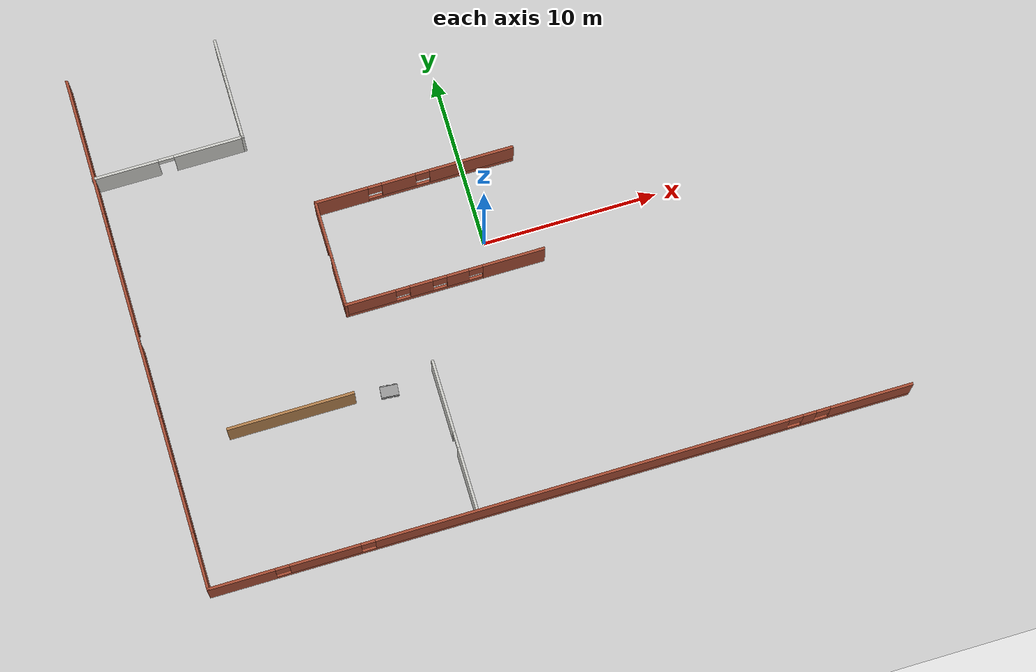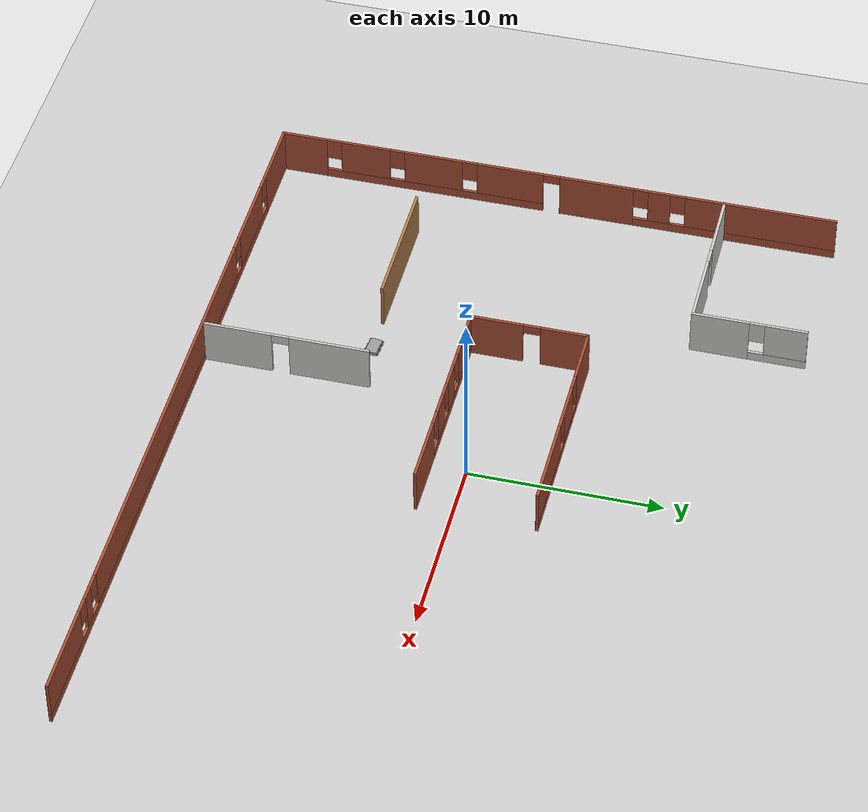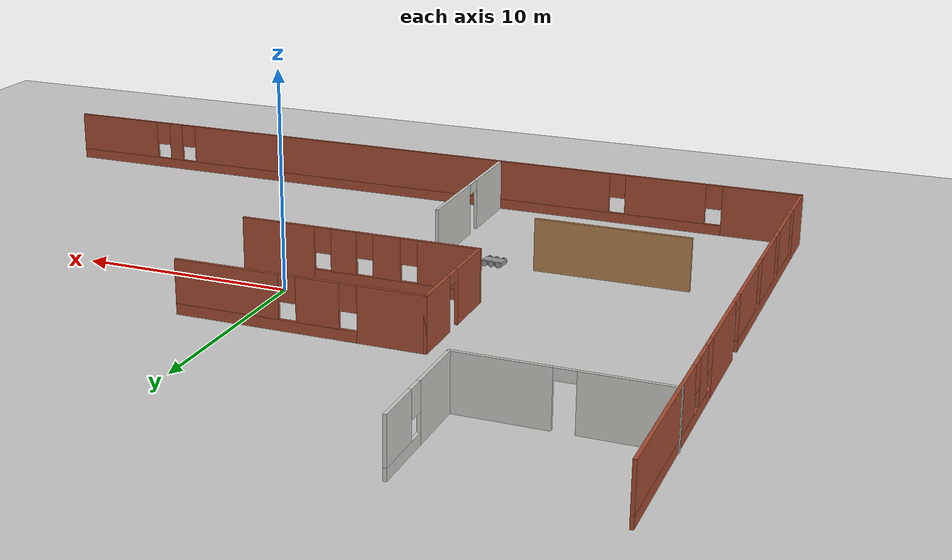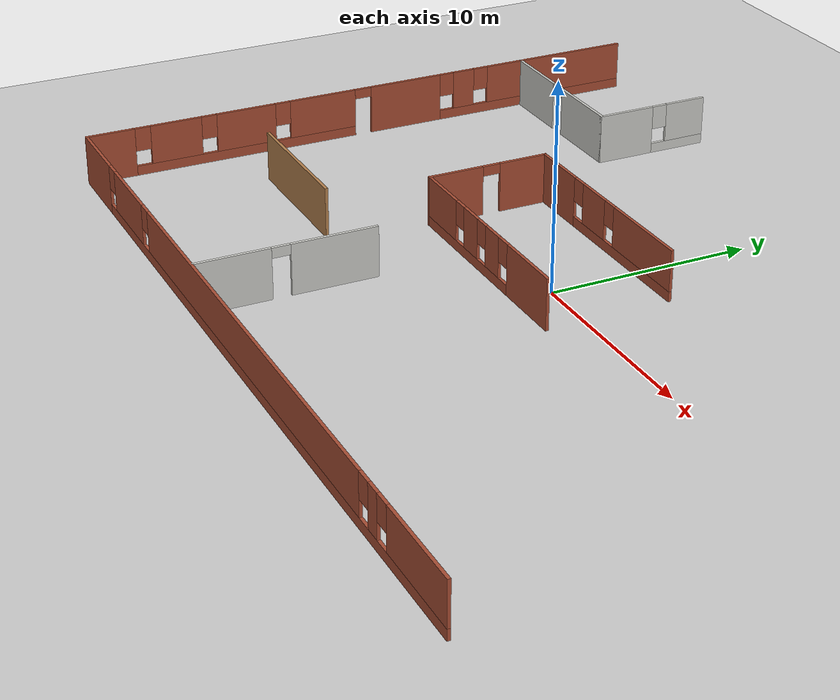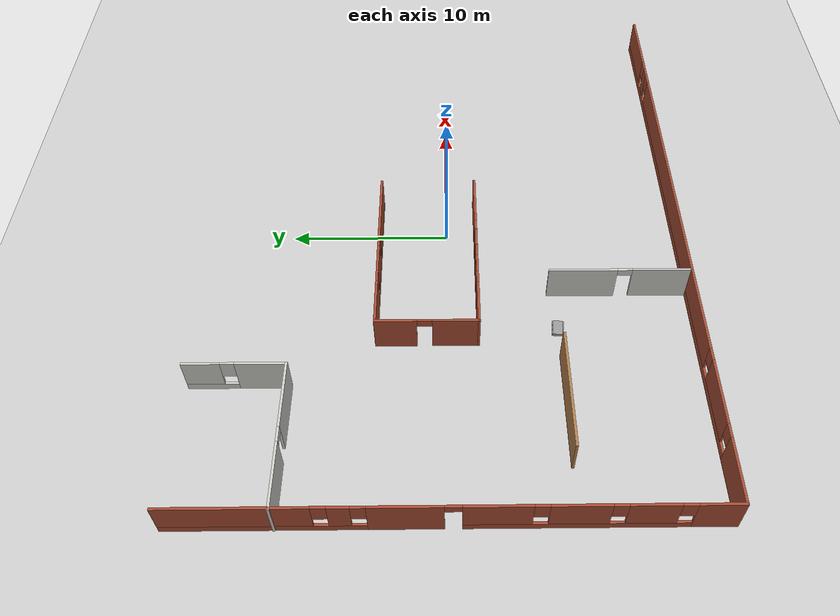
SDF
<sdf version="1.6">
 <world name="default">
  <model name="ground_plane">
   <static>1</static>
   <link name="link">
    <collision name="collision">
     <geometry><plane><normal>0 0 1</normal><size>100 100</size></plane></geometry>
     <surface>
      <contact><collide_bitmask>65535</collide_bitmask></contact>
      <friction><ode><mu>100</mu><mu2>50</mu2></ode></friction>
     </surface>
    </collision>
    <visual name="visual">
     <cast_shadows>0</cast_shadows>
     <geometry><plane><normal>0 0 1</normal><size>100 100</size></plane></geometry>
     <material>
      <script><uri>file://media/materials/scripts/gazebo.material</uri><name>Gazebo/Grey</name></script>
     </material>
    </visual>
   </link>
  </model>
  <model name="Office2">
   <pose>0.0583 0.03565 0 0 -0 0</pose>
   <link name="Wall_0">
    <pose>-19.9784 0.000161 0 0 -0 1.5708</pose>
    <visual name="Wall_0_Visual_0">
     <pose>-13.757 0 1.25 0 -0 0</pose>
     <geometry><box><size>2.48598 0.15 2.5</size></box></geometry>
     <material>
      <script><uri>file://media/materials/scripts/gazebo.material</uri><name>Gazebo/Bricks</name></script>
      <ambient>1 1 1 1</ambient>
     </material>
     <meta><layer>0</layer></meta>
    </visual>
    <collision name="Wall_0_Collision_0">
     <geometry><box><size>2.48598 0.15 2.5</size></box></geometry>
     <pose>-13.757 0 1.25 0 -0 0</pose>
    </collision>
    <visual name="Wall_0_Visual_1">
     <pose>2.2039 0 1.25 0 -0 0</pose>
     <geometry><box><size>3.96148 0.15 2.5</size></box></geometry>
     <material>
      <script><uri>file://media/materials/scripts/gazebo.material</uri><name>Gazebo/Bricks</name></script>
      <ambient>1 1 1 1</ambient>
     </material>
     <meta><layer>0</layer></meta>
    </visual>
    <collision name="Wall_0_Collision_1">
     <geometry><box><size>3.96148 0.15 2.5</size></box></geometry>
     <pose>2.2039 0 1.25 0 -0 0</pose>
    </collision>
    <visual name="Wall_0_Visual_2">
     <pose>-6.59543 0 0.25 0 -0 0</pose>
     <geometry><box><size>11.8372 0.15 0.5</size></box></geometry>
     <material>
      <script><uri>file://media/materials/scripts/gazebo.material</uri><name>Gazebo/Bricks</name></script>
      <ambient>1 1 1 1</ambient>
     </material>
     <meta><layer>0</layer></meta>
    </visual>
    <collision name="Wall_0_Collision_2">
     <geometry><box><size>11.8372 0.15 0.5</size></box></geometry>
     <pose>-6.59543 0 0.25 0 -0 0</pose>
    </collision>
    <visual name="Wall_0_Visual_3">
     <pose>9.59232 0 0.25 0 -0 0</pose>
     <geometry><box><size>10.8154 0.15 0.5</size></box></geometry>
     <material>
      <script><uri>file://media/materials/scripts/gazebo.material</uri><name>Gazebo/Bricks</name></script>
      <ambient>1 1 1 1</ambient>
     </material>
     <meta><layer>0</layer></meta>
    </visual>
    <collision name="Wall_0_Collision_3">
     <geometry><box><size>10.8154 0.15 0.5</size></box></geometry>
     <pose>9.59232 0 0.25 0 -0 0</pose>
    </collision>
    <visual name="Wall_0_Visual_4">
     <pose>-10.3805 0 1.5 0 -0 0</pose>
     <geometry><box><size>2.6671 0.15 2</size></box></geometry>
     <material>
      <script><uri>file://media/materials/scripts/gazebo.material</uri><name>Gazebo/Bricks</name></script>
      <ambient>1 1 1 1</ambient>
     </material>
     <meta><layer>0</layer></meta>
    </visual>
    <collision name="Wall_0_Collision_4">
     <geometry><box><size>2.6671 0.15 2</size></box></geometry>
     <pose>-10.3805 0 1.5 0 -0 0</pose>
    </collision>
    <visual name="Wall_0_Visual_5">
     <pose>-6.66573 0 1.5 0 -0 0</pose>
     <geometry><box><size>3.1624 0.15 2</size></box></geometry>
     <material>
      <script><uri>file://media/materials/scripts/gazebo.material</uri><name>Gazebo/Bricks</name></script>
      <ambient>1 1 1 1</ambient>
     </material>
     <meta><layer>0</layer></meta>
    </visual>
    <collision name="Wall_0_Collision_5">
     <geometry><box><size>3.1624 0.15 2</size></box></geometry>
     <pose>-6.66573 0 1.5 0 -0 0</pose>
    </collision>
    <visual name="Wall_0_Visual_6">
     <pose>-2.48068 0 1.5 0 -0 0</pose>
     <geometry><box><size>3.6077 0.15 2</size></box></geometry>
     <material>
      <script><uri>file://media/materials/scripts/gazebo.material</uri><name>Gazebo/Bricks</name></script>
      <ambient>1 1 1 1</ambient>
     </material>
     <meta><layer>0</layer></meta>
    </visual>
    <collision name="Wall_0_Collision_6">
     <geometry><box><size>3.6077 0.15 2</size></box></geometry>
     <pose>-2.48068 0 1.5 0 -0 0</pose>
    </collision>
    <visual name="Wall_0_Visual_7">
     <pose>-2.48068 0 1.5 0 -0 0</pose>
     <geometry><box><size>3.6077 0.15 2</size></box></geometry>
     <material>
      <script><uri>file://media/materials/scripts/gazebo.material</uri><name>Gazebo/Bricks</name></script>
      <ambient>1 1 1 1</ambient>
     </material>
     <meta><layer>0</layer></meta>
    </visual>
    <collision name="Wall_0_Collision_7">
     <geometry><box><size>3.6077 0.15 2</size></box></geometry>
     <pose>-2.48068 0 1.5 0 -0 0</pose>
    </collision>
    <visual name="Wall_0_Visual_8">
     <pose>5.57524 0 1.5 0 -0 0</pose>
     <geometry><box><size>1.1812 0.15 2</size></box></geometry>
     <material>
      <script><uri>file://media/materials/scripts/gazebo.material</uri><name>Gazebo/Bricks</name></script>
      <ambient>1 1 1 1</ambient>
     </material>
     <meta><layer>0</layer></meta>
    </visual>
    <collision name="Wall_0_Collision_8">
     <geometry><box><size>1.1812 0.15 2</size></box></geometry>
     <pose>5.57524 0 1.5 0 -0 0</pose>
    </collision>
    <visual name="Wall_0_Visual_9">
     <pose>10.9829 0 1.5 0 -0 0</pose>
     <geometry><box><size>8.03416 0.15 2</size></box></geometry>
     <material>
      <script><uri>file://media/materials/scripts/gazebo.material</uri><name>Gazebo/Bricks</name></script>
      <ambient>1 1 1 1</ambient>
     </material>
     <meta><layer>0</layer></meta>
    </visual>
    <collision name="Wall_0_Collision_9">
     <geometry><box><size>8.03416 0.15 2</size></box></geometry>
     <pose>10.9829 0 1.5 0 -0 0</pose>
    </collision>
    <visual name="Wall_0_Visual_10">
     <pose>-12.114 0 1.9 0 -0 0</pose>
     <geometry><box><size>0.8 0.15 1.2</size></box></geometry>
     <material>
      <script><uri>file://media/materials/scripts/gazebo.material</uri><name>Gazebo/Bricks</name></script>
      <ambient>1 1 1 1</ambient>
     </material>
     <meta><layer>0</layer></meta>
    </visual>
    <collision name="Wall_0_Collision_10">
     <geometry><box><size>0.8 0.15 1.2</size></box></geometry>
     <pose>-12.114 0 1.9 0 -0 0</pose>
    </collision>
    <visual name="Wall_0_Visual_11">
     <pose>4.58464 0 1.9 0 -0 0</pose>
     <geometry><box><size>0.8 0.15 1.2</size></box></geometry>
     <material>
      <script><uri>file://media/materials/scripts/gazebo.material</uri><name>Gazebo/Bricks</name></script>
      <ambient>1 1 1 1</ambient>
     </material>
     <meta><layer>0</layer></meta>
    </visual>
    <collision name="Wall_0_Collision_11">
     <geometry><box><size>0.8 0.15 1.2</size></box></geometry>
     <pose>4.58464 0 1.9 0 -0 0</pose>
    </collision>
    <visual name="Wall_0_Visual_12">
     <pose>-8.64693 0 1.9 0 -0 0</pose>
     <geometry><box><size>0.8 0.15 1.2</size></box></geometry>
     <material>
      <script><uri>file://media/materials/scripts/gazebo.material</uri><name>Gazebo/Bricks</name></script>
      <ambient>1 1 1 1</ambient>
     </material>
     <meta><layer>0</layer></meta>
    </visual>
    <collision name="Wall_0_Collision_12">
     <geometry><box><size>0.8 0.15 1.2</size></box></geometry>
     <pose>-8.64693 0 1.9 0 -0 0</pose>
    </collision>
    <visual name="Wall_0_Visual_13">
     <pose>-4.68453 0 1.9 0 -0 0</pose>
     <geometry><box><size>0.8 0.15 1.2</size></box></geometry>
     <material>
      <script><uri>file://media/materials/scripts/gazebo.material</uri><name>Gazebo/Bricks</name></script>
      <ambient>1 1 1 1</ambient>
     </material>
     <meta><layer>0</layer></meta>
    </visual>
    <collision name="Wall_0_Collision_13">
     <geometry><box><size>0.8 0.15 1.2</size></box></geometry>
     <pose>-4.68453 0 1.9 0 -0 0</pose>
    </collision>
    <visual name="Wall_0_Visual_14">
     <pose>6.56584 0 1.9 0 -0 0</pose>
     <geometry><box><size>0.8 0.15 1.2</size></box></geometry>
     <material>
      <script><uri>file://media/materials/scripts/gazebo.material</uri><name>Gazebo/Bricks</name></script>
      <ambient>1 1 1 1</ambient>
     </material>
     <meta><layer>0</layer></meta>
    </visual>
    <collision name="Wall_0_Collision_14">
     <geometry><box><size>0.8 0.15 1.2</size></box></geometry>
     <pose>6.56584 0 1.9 0 -0 0</pose>
    </collision>
    <visual name="Wall_0_Visual_15">
     <pose>-0.226838 0 2.25 0 -0 0</pose>
     <geometry><box><size>0.9 0.15 0.5</size></box></geometry>
     <material>
      <script><uri>file://media/materials/scripts/gazebo.material</uri><name>Gazebo/Bricks</name></script>
      <ambient>1 1 1 1</ambient>
     </material>
     <meta><layer>0</layer></meta>
    </visual>
    <collision name="Wall_0_Collision_15">
     <geometry><box><size>0.9 0.15 0.5</size></box></geometry>
     <pose>-0.226838 0 2.25 0 -0 0</pose>
    </collision>
    <visual name="Wall_0_Visual_16">
     <pose>-0.226838 0 2.25 0 -0 0</pose>
     <geometry><box><size>0.9 0.15 0.5</size></box></geometry>
     <material>
      <script><uri>file://media/materials/scripts/gazebo.material</uri><name>Gazebo/Bricks</name></script>
      <ambient>1 1 1 1</ambient>
     </material>
     <meta><layer>0</layer></meta>
    </visual>
    <collision name="Wall_0_Collision_16">
     <geometry><box><size>0.9 0.15 0.5</size></box></geometry>
     <pose>-0.226838 0 2.25 0 -0 0</pose>
    </collision>
   </link>
   <link name="Wall_11">
    <pose>-15.7131 9.0425 0 0 -0 0</pose>
    <visual name="Wall_11_Visual_0">
     <pose>-2.47517 0 1.25 0 -0 0</pose>
     <geometry><box><size>3.79967 0.15 2.5</size></box></geometry>
     <material>
      <script><uri>file://media/materials/scripts/gazebo.material</uri><name>Gazebo/CeilingTiled</name></script>
      <ambient>0.203922 0.396078 0.643137 1</ambient>
     </material>
     <meta><layer>0</layer></meta>
    </visual>
    <collision name="Wall_11_Collision_0">
     <geometry><box><size>3.79967 0.15 2.5</size></box></geometry>
     <pose>-2.47517 0 1.25 0 -0 0</pose>
    </collision>
    <visual name="Wall_11_Visual_1">
     <pose>2.34983 0 1.25 0 -0 0</pose>
     <geometry><box><size>4.05033 0.15 2.5</size></box></geometry>
     <material>
      <script><uri>file://media/materials/scripts/gazebo.material</uri><name>Gazebo/CeilingTiled</name></script>
      <ambient>0.203922 0.396078 0.643137 1</ambient>
     </material>
     <meta><layer>0</layer></meta>
    </visual>
    <collision name="Wall_11_Collision_1">
     <geometry><box><size>4.05033 0.15 2.5</size></box></geometry>
     <pose>2.34983 0 1.25 0 -0 0</pose>
    </collision>
    <visual name="Wall_11_Visual_2">
     <pose>-0.125334 0 2.25 0 -0 0</pose>
     <geometry><box><size>0.9 0.15 0.5</size></box></geometry>
     <material>
      <script><uri>file://media/materials/scripts/gazebo.material</uri><name>Gazebo/CeilingTiled</name></script>
      <ambient>0.203922 0.396078 0.643137 1</ambient>
     </material>
     <meta><layer>0</layer></meta>
    </visual>
    <collision name="Wall_11_Collision_2">
     <geometry><box><size>0.9 0.15 0.5</size></box></geometry>
     <pose>-0.125334 0 2.25 0 -0 0</pose>
    </collision>
   </link>
   <link name="Wall_15">
    <pose>-11.4131 11.9675 0 0 -0 1.5708</pose>
    <visual name="Wall_15_Visual_0">
     <pose>-1.49971 0 1.25 0 -0 0</pose>
     <geometry><box><size>3.00058 0.15 2.5</size></box></geometry>
     <material>
      <script><uri>file://media/materials/scripts/gazebo.material</uri><name>Gazebo/CeilingTiled</name></script>
      <ambient>1 1 1 1</ambient>
     </material>
     <meta><layer>0</layer></meta>
    </visual>
    <collision name="Wall_15_Collision_0">
     <geometry><box><size>3.00058 0.15 2.5</size></box></geometry>
     <pose>-1.49971 0 1.25 0 -0 0</pose>
    </collision>
    <visual name="Wall_15_Visual_1">
     <pose>1.50029 0 0.25 0 -0 0</pose>
     <geometry><box><size>2.99942 0.15 0.5</size></box></geometry>
     <material>
      <script><uri>file://media/materials/scripts/gazebo.material</uri><name>Gazebo/CeilingTiled</name></script>
      <ambient>1 1 1 1</ambient>
     </material>
     <meta><layer>0</layer></meta>
    </visual>
    <collision name="Wall_15_Collision_1">
     <geometry><box><size>2.99942 0.15 0.5</size></box></geometry>
     <pose>1.50029 0 0.25 0 -0 0</pose>
    </collision>
    <visual name="Wall_15_Visual_2">
     <pose>1.90029 0 1.5 0 -0 0</pose>
     <geometry><box><size>2.19942 0.15 2</size></box></geometry>
     <material>
      <script><uri>file://media/materials/scripts/gazebo.material</uri><name>Gazebo/CeilingTiled</name></script>
      <ambient>1 1 1 1</ambient>
     </material>
     <meta><layer>0</layer></meta>
    </visual>
    <collision name="Wall_15_Collision_2">
     <geometry><box><size>2.19942 0.15 2</size></box></geometry>
     <pose>1.90029 0 1.5 0 -0 0</pose>
    </collision>
    <visual name="Wall_15_Visual_3">
     <pose>0.400581 0 1.9 0 -0 0</pose>
     <geometry><box><size>0.8 0.15 1.2</size></box></geometry>
     <material>
      <script><uri>file://media/materials/scripts/gazebo.material</uri><name>Gazebo/CeilingTiled</name></script>
      <ambient>1 1 1 1</ambient>
     </material>
     <meta><layer>0</layer></meta>
    </visual>
    <collision name="Wall_15_Collision_3">
     <geometry><box><size>0.8 0.15 1.2</size></box></geometry>
     <pose>0.400581 0 1.9 0 -0 0</pose>
    </collision>
   </link>
   <link name="Wall_22">
    <pose>-4.86214 -10.5734 0 0 -0 -1.5708</pose>
    <visual name="Wall_22_Visual_0">
     <pose>-2.27908 0 1.25 0 -0 0</pose>
     <geometry><box><size>4.19185 0.15 2.5</size></box></geometry>
     <material>
      <script><uri>file://media/materials/scripts/gazebo.material</uri><name>Gazebo/CeilingTiled</name></script>
      <ambient>1 1 1 1</ambient>
     </material>
     <meta><layer>0</layer></meta>
    </visual>
    <collision name="Wall_22_Collision_0">
     <geometry><box><size>4.19185 0.15 2.5</size></box></geometry>
     <pose>-2.27908 0 1.25 0 -0 0</pose>
    </collision>
    <visual name="Wall_22_Visual_1">
     <pose>2.54592 0 1.25 0 -0 0</pose>
     <geometry><box><size>3.65815 0.15 2.5</size></box></geometry>
     <material>
      <script><uri>file://media/materials/scripts/gazebo.material</uri><name>Gazebo/CeilingTiled</name></script>
      <ambient>1 1 1 1</ambient>
     </material>
     <meta><layer>0</layer></meta>
    </visual>
    <collision name="Wall_22_Collision_1">
     <geometry><box><size>3.65815 0.15 2.5</size></box></geometry>
     <pose>2.54592 0 1.25 0 -0 0</pose>
    </collision>
    <visual name="Wall_22_Visual_2">
     <pose>0.266848 0 2.25 0 -0 0</pose>
     <geometry><box><size>0.9 0.15 0.5</size></box></geometry>
     <material>
      <script><uri>file://media/materials/scripts/gazebo.material</uri><name>Gazebo/CeilingTiled</name></script>
      <ambient>1 1 1 1</ambient>
     </material>
     <meta><layer>0</layer></meta>
    </visual>
    <collision name="Wall_22_Collision_2">
     <geometry><box><size>0.9 0.15 0.5</size></box></geometry>
     <pose>0.266848 0 2.25 0 -0 0</pose>
    </collision>
   </link>
   <link name="Wall_26">
    <pose>-2.87549 4.23102 0 0 -0 0</pose>
    <visual name="Wall_26_Visual_0">
     <pose>-4.21433 0 1.25 0 -0 0</pose>
     <geometry><box><size>3.07134 0.15 2.5</size></box></geometry>
     <material>
      <script><uri>file://media/materials/scripts/gazebo.material</uri><name>Gazebo/Bricks</name></script>
      <ambient>1 1 1 1</ambient>
     </material>
     <meta><layer>0</layer></meta>
    </visual>
    <collision name="Wall_26_Collision_0">
     <geometry><box><size>3.07134 0.15 2.5</size></box></geometry>
     <pose>-4.21433 0 1.25 0 -0 0</pose>
    </collision>
    <visual name="Wall_26_Visual_1">
     <pose>1.53567 0 0.25 0 -0 0</pose>
     <geometry><box><size>8.42866 0.15 0.5</size></box></geometry>
     <material>
      <script><uri>file://media/materials/scripts/gazebo.material</uri><name>Gazebo/Bricks</name></script>
      <ambient>1 1 1 1</ambient>
     </material>
     <meta><layer>0</layer></meta>
    </visual>
    <collision name="Wall_26_Collision_1">
     <geometry><box><size>8.42866 0.15 0.5</size></box></geometry>
     <pose>1.53567 0 0.25 0 -0 0</pose>
    </collision>
    <visual name="Wall_26_Visual_2">
     <pose>-0.898898 0 1.5 0 -0 0</pose>
     <geometry><box><size>1.95952 0.15 2</size></box></geometry>
     <material>
      <script><uri>file://media/materials/scripts/gazebo.material</uri><name>Gazebo/Bricks</name></script>
      <ambient>1 1 1 1</ambient>
     </material>
     <meta><layer>0</layer></meta>
    </visual>
    <collision name="Wall_26_Collision_2">
     <geometry><box><size>1.95952 0.15 2</size></box></geometry>
     <pose>-0.898898 0 1.5 0 -0 0</pose>
    </collision>
    <visual name="Wall_26_Visual_3">
     <pose>3.31543 0 1.5 0 -0 0</pose>
     <geometry><box><size>4.86913 0.15 2</size></box></geometry>
     <material>
      <script><uri>file://media/materials/scripts/gazebo.material</uri><name>Gazebo/Bricks</name></script>
      <ambient>1 1 1 1</ambient>
     </material>
     <meta><layer>0</layer></meta>
    </visual>
    <collision name="Wall_26_Collision_3">
     <geometry><box><size>4.86913 0.15 2</size></box></geometry>
     <pose>3.31543 0 1.5 0 -0 0</pose>
    </collision>
    <visual name="Wall_26_Visual_4">
     <pose>-2.27866 0 1.9 0 -0 0</pose>
     <geometry><box><size>0.8 0.15 1.2</size></box></geometry>
     <material>
      <script><uri>file://media/materials/scripts/gazebo.material</uri><name>Gazebo/Bricks</name></script>
      <ambient>1 1 1 1</ambient>
     </material>
     <meta><layer>0</layer></meta>
    </visual>
    <collision name="Wall_26_Collision_4">
     <geometry><box><size>0.8 0.15 1.2</size></box></geometry>
     <pose>-2.27866 0 1.9 0 -0 0</pose>
    </collision>
    <visual name="Wall_26_Visual_5">
     <pose>0.480865 0 1.9 0 -0 0</pose>
     <geometry><box><size>0.8 0.15 1.2</size></box></geometry>
     <material>
      <script><uri>file://media/materials/scripts/gazebo.material</uri><name>Gazebo/Bricks</name></script>
      <ambient>1 1 1 1</ambient>
     </material>
     <meta><layer>0</layer></meta>
    </visual>
    <collision name="Wall_26_Collision_5">
     <geometry><box><size>0.8 0.15 1.2</size></box></geometry>
     <pose>0.480865 0 1.9 0 -0 0</pose>
    </collision>
   </link>
   <link name="Wall_28">
    <pose>-2.87549 -1.86898 0 0 -0 3.14159</pose>
    <visual name="Wall_28_Visual_0">
     <pose>-3.95225 0 1.25 0 -0 0</pose>
     <geometry><box><size>3.59551 0.15 2.5</size></box></geometry>
     <material>
      <script><uri>file://media/materials/scripts/gazebo.material</uri><name>Gazebo/Bricks</name></script>
      <ambient>1 1 1 1</ambient>
     </material>
     <meta><layer>0</layer></meta>
    </visual>
    <collision name="Wall_28_Collision_0">
     <geometry><box><size>3.59551 0.15 2.5</size></box></geometry>
     <pose>-3.95225 0 1.25 0 -0 0</pose>
    </collision>
    <visual name="Wall_28_Visual_1">
     <pose>1.79775 0 0.25 0 -0 0</pose>
     <geometry><box><size>7.90449 0.15 0.5</size></box></geometry>
     <material>
      <script><uri>file://media/materials/scripts/gazebo.material</uri><name>Gazebo/Bricks</name></script>
      <ambient>1 1 1 1</ambient>
     </material>
     <meta><layer>0</layer></meta>
    </visual>
    <collision name="Wall_28_Collision_1">
     <geometry><box><size>7.90449 0.15 0.5</size></box></geometry>
     <pose>1.79775 0 0.25 0 -0 0</pose>
    </collision>
    <visual name="Wall_28_Visual_2">
     <pose>-0.728514 0 1.5 0 -0 0</pose>
     <geometry><box><size>1.25195 0.15 2</size></box></geometry>
     <material>
      <script><uri>file://media/materials/scripts/gazebo.material</uri><name>Gazebo/Bricks</name></script>
      <ambient>1 1 1 1</ambient>
     </material>
     <meta><layer>0</layer></meta>
    </visual>
    <collision name="Wall_28_Collision_2">
     <geometry><box><size>1.25195 0.15 2</size></box></geometry>
     <pose>-0.728514 0 1.5 0 -0 0</pose>
    </collision>
    <visual name="Wall_28_Visual_3">
     <pose>1.35882 0 1.5 0 -0 0</pose>
     <geometry><box><size>1.32271 0.15 2</size></box></geometry>
     <material>
      <script><uri>file://media/materials/scripts/gazebo.material</uri><name>Gazebo/Bricks</name></script>
      <ambient>1 1 1 1</ambient>
     </material>
     <meta><layer>0</layer></meta>
    </visual>
    <collision name="Wall_28_Collision_3">
     <geometry><box><size>1.32271 0.15 2</size></box></geometry>
     <pose>1.35882 0 1.5 0 -0 0</pose>
    </collision>
    <visual name="Wall_28_Visual_4">
     <pose>4.28509 0 1.5 0 -0 0</pose>
     <geometry><box><size>2.92983 0.15 2</size></box></geometry>
     <material>
      <script><uri>file://media/materials/scripts/gazebo.material</uri><name>Gazebo/Bricks</name></script>
      <ambient>1 1 1 1</ambient>
     </material>
     <meta><layer>0</layer></meta>
    </visual>
    <collision name="Wall_28_Collision_4">
     <geometry><box><size>2.92983 0.15 2</size></box></geometry>
     <pose>4.28509 0 1.5 0 -0 0</pose>
    </collision>
    <visual name="Wall_28_Visual_5">
     <pose>-1.75449 0 1.9 0 -0 0</pose>
     <geometry><box><size>0.8 0.15 1.2</size></box></geometry>
     <material>
      <script><uri>file://media/materials/scripts/gazebo.material</uri><name>Gazebo/Bricks</name></script>
      <ambient>1 1 1 1</ambient>
     </material>
     <meta><layer>0</layer></meta>
    </visual>
    <collision name="Wall_28_Collision_5">
     <geometry><box><size>0.8 0.15 1.2</size></box></geometry>
     <pose>-1.75449 0 1.9 0 -0 0</pose>
    </collision>
    <visual name="Wall_28_Visual_6">
     <pose>0.297463 0 1.9 0 -0 0</pose>
     <geometry><box><size>0.8 0.15 1.2</size></box></geometry>
     <material>
      <script><uri>file://media/materials/scripts/gazebo.material</uri><name>Gazebo/Bricks</name></script>
      <ambient>1 1 1 1</ambient>
     </material>
     <meta><layer>0</layer></meta>
    </visual>
    <collision name="Wall_28_Collision_6">
     <geometry><box><size>0.8 0.15 1.2</size></box></geometry>
     <pose>0.297463 0 1.9 0 -0 0</pose>
    </collision>
    <visual name="Wall_28_Visual_7">
     <pose>2.42017 0 1.9 0 -0 0</pose>
     <geometry><box><size>0.8 0.15 1.2</size></box></geometry>
     <material>
      <script><uri>file://media/materials/scripts/gazebo.material</uri><name>Gazebo/Bricks</name></script>
      <ambient>1 1 1 1</ambient>
     </material>
     <meta><layer>0</layer></meta>
    </visual>
    <collision name="Wall_28_Collision_7">
     <geometry><box><size>0.8 0.15 1.2</size></box></geometry>
     <pose>2.42017 0 1.9 0 -0 0</pose>
    </collision>
   </link>
   <link name="Wall_29">
    <pose>-8.55049 1.18102 0 0 -0 1.5708</pose>
    <visual name="Wall_29_Visual_0">
     <pose>-1.71302 0 1.25 0 -0 0</pose>
     <geometry><box><size>2.82396 0.15 2.5</size></box></geometry>
     <material>
      <script><uri>file://media/materials/scripts/gazebo.material</uri><name>Gazebo/Bricks</name></script>
      <ambient>1 1 1 1</ambient>
     </material>
     <meta><layer>0</layer></meta>
    </visual>
    <collision name="Wall_29_Collision_0">
     <geometry><box><size>2.82396 0.15 2.5</size></box></geometry>
     <pose>-1.71302 0 1.25 0 -0 0</pose>
    </collision>
    <visual name="Wall_29_Visual_1">
     <pose>1.86198 0 1.25 0 -0 0</pose>
     <geometry><box><size>2.52604 0.15 2.5</size></box></geometry>
     <material>
      <script><uri>file://media/materials/scripts/gazebo.material</uri><name>Gazebo/Bricks</name></script>
      <ambient>1 1 1 1</ambient>
     </material>
     <meta><layer>0</layer></meta>
    </visual>
    <collision name="Wall_29_Collision_1">
     <geometry><box><size>2.52604 0.15 2.5</size></box></geometry>
     <pose>1.86198 0 1.25 0 -0 0</pose>
    </collision>
    <visual name="Wall_29_Visual_2">
     <pose>0.148961 0 2.25 0 -0 0</pose>
     <geometry><box><size>0.9 0.15 0.5</size></box></geometry>
     <material>
      <script><uri>file://media/materials/scripts/gazebo.material</uri><name>Gazebo/Bricks</name></script>
      <ambient>1 1 1 1</ambient>
     </material>
     <meta><layer>0</layer></meta>
    </visual>
    <collision name="Wall_29_Collision_2">
     <geometry><box><size>0.9 0.15 0.5</size></box></geometry>
     <pose>0.148961 0 2.25 0 -0 0</pose>
    </collision>
   </link>
   <link name="Wall_33">
    <collision name="Wall_33_Collision">
     <geometry><box><size>7.25 0.15 2.5</size></box></geometry>
     <pose>0 0 1.25 0 -0 0</pose>
    </collision>
    <visual name="Wall_33_Visual">
     <pose>0 0 1.25 0 -0 0</pose>
     <geometry><box><size>7.25 0.15 2.5</size></box></geometry>
     <material>
      <script><uri>file://media/materials/scripts/gazebo.material</uri><name>Gazebo/Wood</name></script>
      <ambient>1 1 1 1</ambient>
     </material>
     <meta><layer>0</layer></meta>
    </visual>
    <pose>-13.0668 -6.73633 0 0 -0 0</pose>
   </link>
   <link name="Wall_9">
    <pose>-0.053378 -14.925 0 0 -0 -8e-06</pose>
    <visual name="Wall_9_Visual_0">
     <pose>-18.0925 0 1.25 0 -0 0</pose>
     <geometry><box><size>3.81491 0.15 2.5</size></box></geometry>
     <material>
      <script><uri>file://media/materials/scripts/gazebo.material</uri><name>Gazebo/Bricks</name></script>
      <ambient>1 1 1 1</ambient>
     </material>
     <meta><layer>0</layer></meta>
    </visual>
    <collision name="Wall_9_Collision_0">
     <geometry><box><size>3.81491 0.15 2.5</size></box></geometry>
     <pose>-18.0925 0 1.25 0 -0 0</pose>
    </collision>
    <visual name="Wall_9_Visual_1">
     <pose>1.90746 0 0.25 0 -0 0</pose>
     <geometry><box><size>36.1851 0.15 0.5</size></box></geometry>
     <material>
      <script><uri>file://media/materials/scripts/gazebo.material</uri><name>Gazebo/Bricks</name></script>
      <ambient>1 1 1 1</ambient>
     </material>
     <meta><layer>0</layer></meta>
    </visual>
    <collision name="Wall_9_Collision_1">
     <geometry><box><size>36.1851 0.15 0.5</size></box></geometry>
     <pose>1.90746 0 0.25 0 -0 0</pose>
    </collision>
    <visual name="Wall_9_Visual_2">
     <pose>-13.3793 0 1.5 0 -0 0</pose>
     <geometry><box><size>4.01148 0.15 2</size></box></geometry>
     <material>
      <script><uri>file://media/materials/scripts/gazebo.material</uri><name>Gazebo/Bricks</name></script>
      <ambient>1 1 1 1</ambient>
     </material>
     <meta><layer>0</layer></meta>
    </visual>
    <collision name="Wall_9_Collision_2">
     <geometry><box><size>4.01148 0.15 2</size></box></geometry>
     <pose>-13.3793 0 1.5 0 -0 0</pose>
    </collision>
    <visual name="Wall_9_Visual_3">
     <pose>1.16123 0 1.5 0 -0 0</pose>
     <geometry><box><size>23.4697 0.15 2</size></box></geometry>
     <material>
      <script><uri>file://media/materials/scripts/gazebo.material</uri><name>Gazebo/Bricks</name></script>
      <ambient>1 1 1 1</ambient>
     </material>
     <meta><layer>0</layer></meta>
    </visual>
    <collision name="Wall_9_Collision_3">
     <geometry><box><size>23.4697 0.15 2</size></box></geometry>
     <pose>1.16123 0 1.5 0 -0 0</pose>
    </collision>
    <visual name="Wall_9_Visual_4">
     <pose>14.0744 0 1.5 0 -0 0</pose>
     <geometry><box><size>0.756656 0.15 2</size></box></geometry>
     <material>
      <script><uri>file://media/materials/scripts/gazebo.material</uri><name>Gazebo/Bricks</name></script>
      <ambient>1 1 1 1</ambient>
     </material>
     <meta><layer>0</layer></meta>
    </visual>
    <collision name="Wall_9_Collision_4">
     <geometry><box><size>0.756656 0.15 2</size></box></geometry>
     <pose>14.0744 0 1.5 0 -0 0</pose>
    </collision>
    <visual name="Wall_9_Visual_5">
     <pose>17.6264 0 1.5 0 -0 0</pose>
     <geometry><box><size>4.74728 0.15 2</size></box></geometry>
     <material>
      <script><uri>file://media/materials/scripts/gazebo.material</uri><name>Gazebo/Bricks</name></script>
      <ambient>1 1 1 1</ambient>
     </material>
     <meta><layer>0</layer></meta>
    </visual>
    <collision name="Wall_9_Collision_5">
     <geometry><box><size>4.74728 0.15 2</size></box></geometry>
     <pose>17.6264 0 1.5 0 -0 0</pose>
    </collision>
    <visual name="Wall_9_Visual_6">
     <pose>-15.7851 0 1.9 0 -0 0</pose>
     <geometry><box><size>0.8 0.15 1.2</size></box></geometry>
     <material>
      <script><uri>file://media/materials/scripts/gazebo.material</uri><name>Gazebo/Bricks</name></script>
      <ambient>1 1 1 1</ambient>
     </material>
     <meta><layer>0</layer></meta>
    </visual>
    <collision name="Wall_9_Collision_6">
     <geometry><box><size>0.8 0.15 1.2</size></box></geometry>
     <pose>-15.7851 0 1.9 0 -0 0</pose>
    </collision>
    <visual name="Wall_9_Visual_7">
     <pose>-10.9736 0 1.9 0 -0 0</pose>
     <geometry><box><size>0.8 0.15 1.2</size></box></geometry>
     <material>
      <script><uri>file://media/materials/scripts/gazebo.material</uri><name>Gazebo/Bricks</name></script>
      <ambient>1 1 1 1</ambient>
     </material>
     <meta><layer>0</layer></meta>
    </visual>
    <collision name="Wall_9_Collision_7">
     <geometry><box><size>0.8 0.15 1.2</size></box></geometry>
     <pose>-10.9736 0 1.9 0 -0 0</pose>
    </collision>
    <visual name="Wall_9_Visual_8">
     <pose>13.2961 0 1.9 0 -0 0</pose>
     <geometry><box><size>0.8 0.15 1.2</size></box></geometry>
     <material>
      <script><uri>file://media/materials/scripts/gazebo.material</uri><name>Gazebo/Bricks</name></script>
      <ambient>1 1 1 1</ambient>
     </material>
     <meta><layer>0</layer></meta>
    </visual>
    <collision name="Wall_9_Collision_8">
     <geometry><box><size>0.8 0.15 1.2</size></box></geometry>
     <pose>13.2961 0 1.9 0 -0 0</pose>
    </collision>
    <visual name="Wall_9_Visual_9">
     <pose>14.8527 0 1.9 0 -0 0</pose>
     <geometry><box><size>0.8 0.15 1.2</size></box></geometry>
     <material>
      <script><uri>file://media/materials/scripts/gazebo.material</uri><name>Gazebo/Bricks</name></script>
      <ambient>1 1 1 1</ambient>
     </material>
     <meta><layer>0</layer></meta>
    </visual>
    <collision name="Wall_9_Collision_9">
     <geometry><box><size>0.8 0.15 1.2</size></box></geometry>
     <pose>14.8527 0 1.9 0 -0 0</pose>
    </collision>
   </link>
   <static>1</static>
  </model>
  <model name="rover1">
   <link name="link_0">
    <inertial>
     <mass>1</mass>
     <inertia>
      <ixx>0.166667</ixx>
      <ixy>0</ixy>
      <ixz>0</ixz>
      <iyy>0.166667</iyy>
      <iyz>0</iyz>
      <izz>0.166667</izz>
     </inertia>
    </inertial>
    <pose>-0.000993 0.033414 0.112494 0 -0 1.5707</pose>
    <visual name="visual">
     <geometry><box><size>0.6 1 0.2</size></box></geometry>
     <material>
      <lighting>1</lighting>
      <script><uri>file://media/materials/scripts/gazebo.material</uri><name>Gazebo/Grey</name></script>
      <shader type="vertex"><normal_map>__default__</normal_map></shader>
      <ambient>0.3 0.3 0.3 1</ambient>
      <diffuse>0.7 0.7 0.7 1</diffuse>
      <specular>0.01 0.01 0.01 1</specular>
      <emissive>0 0 0 1</emissive>
     </material>
    </visual>
    <collision name="collision">
     <geometry><box><size>0.6 1 0.2</size></box></geometry>
     <surface>
      <friction>
       <ode><mu>1</mu><mu2>1</mu2><fdir1>0 0 0</fdir1><slip1>0</slip1><slip2>0</slip2></ode>
       <torsional>
        <coefficient>1</coefficient>
        <patch_radius>0</patch_radius>
        <surface_radius>0</surface_radius>
        <use_patch_radius>1</use_patch_radius>
        <ode><slip>0</slip></ode>
       </torsional>
      </friction>
      <bounce><restitution_coefficient>0</restitution_coefficient><threshold>1e+06</threshold></bounce>
      <contact>
       <collide_without_contact>0</collide_without_contact>
       <collide_without_contact_bitmask>1</collide_without_contact_bitmask>
       <collide_bitmask>1</collide_bitmask>
       <ode>
        <soft_cfm>0</soft_cfm>
        <soft_erp>0.2</soft_erp>
        <kp>1e+13</kp>
        <kd>1</kd>
        <max_vel>0.01</max_vel>
        <min_depth>0</min_depth>
       </ode>
       <bullet>
        <split_impulse>1</split_impulse>
        <split_impulse_penetration_threshold>-0.01</split_impulse_penetration_threshold>
        <soft_cfm>0</soft_cfm>
        <soft_erp>0.2</soft_erp>
        <kp>1e+13</kp>
        <kd>1</kd>
       </bullet>
      </contact>
     </surface>
    </collision>
   </link>
   <link name="link_1">
    <inertial>
     <mass>1</mass>
     <inertia><ixx>0.145833</ixx><ixy>0</ixy><ixz>0</ixz><iyy>0.145833</iyy><iyz>0</iyz><izz>0.125</izz></inertia>
    </inertial>
    <pose>-0.000993 -0.291648 0.102481 1.5707 -0 0</pose>
    <visual name="visual">
     <geometry><cylinder><radius>0.15</radius><length>0.05</length></cylinder></geometry>
     <material>
      <lighting>1</lighting>
      <script><uri>file://media/materials/scripts/gazebo.material</uri><name>Gazebo/Grey</name></script>
      <shader type="vertex"><normal_map>__default__</normal_map></shader>
      <ambient>0.3 0.3 0.3 1</ambient>
      <diffuse>0.7 0.7 0.7 1</diffuse>
      <specular>0.01 0.01 0.01 1</specular>
      <emissive>0 0 0 1</emissive>
     </material>
    </visual>
    <collision name="collision">
     <geometry><cylinder><radius>0.15</radius><length>0.05</length></cylinder></geometry>
     <surface>
      <friction>
       <ode><mu>1</mu><mu2>1</mu2><fdir1>0 0 0</fdir1><slip1>0</slip1><slip2>0</slip2></ode>
       <torsional>
        <coefficient>1</coefficient>
        <patch_radius>0</patch_radius>
        <surface_radius>0</surface_radius>
        <use_patch_radius>1</use_patch_radius>
        <ode><slip>0</slip></ode>
       </torsional>
      </friction>
      <bounce><restitution_coefficient>0</restitution_coefficient><threshold>1e+06</threshold></bounce>
      <contact>
       <collide_without_contact>0</collide_without_contact>
       <collide_without_contact_bitmask>1</collide_without_contact_bitmask>
       <collide_bitmask>1</collide_bitmask>
       <ode>
        <soft_cfm>0</soft_cfm>
        <soft_erp>0.2</soft_erp>
        <kp>1e+13</kp>
        <kd>1</kd>
        <max_vel>0.01</max_vel>
        <min_depth>0</min_depth>
       </ode>
       <bullet>
        <split_impulse>1</split_impulse>
        <split_impulse_penetration_threshold>-0.01</split_impulse_penetration_threshold>
        <soft_cfm>0</soft_cfm>
        <soft_erp>0.2</soft_erp>
        <kp>1e+13</kp>
        <kd>1</kd>
       </bullet>
      </contact>
     </surface>
    </collision>
   </link>
   <link name="link_1_clone">
    <inertial>
     <mass>1</mass>
     <inertia><ixx>0.145833</ixx><ixy>0</ixy><ixz>0</ixz><iyy>0.145833</iyy><iyz>0</iyz><izz>0.125</izz></inertia>
    </inertial>
    <pose>-0.351021 -0.291648 0.098131 1.5707 -0 0</pose>
    <visual name="visual">
     <geometry><cylinder><radius>0.15</radius><length>0.05</length></cylinder></geometry>
     <material>
      <lighting>1</lighting>
      <script><uri>file://media/materials/scripts/gazebo.material</uri><name>Gazebo/Grey</name></script>
      <shader type="vertex"><normal_map>__default__</normal_map></shader>
      <ambient>0.3 0.3 0.3 1</ambient>
      <diffuse>0.7 0.7 0.7 1</diffuse>
      <specular>0.01 0.01 0.01 1</specular>
      <emissive>0 0 0 1</emissive>
     </material>
    </visual>
    <collision name="collision">
     <geometry><cylinder><radius>0.15</radius><length>0.05</length></cylinder></geometry>
     <surface>
      <friction>
       <ode><mu>1</mu><mu2>1</mu2><fdir1>0 0 0</fdir1><slip1>0</slip1><slip2>0</slip2></ode>
       <torsional>
        <coefficient>1</coefficient>
        <patch_radius>0</patch_radius>
        <surface_radius>0</surface_radius>
        <use_patch_radius>1</use_patch_radius>
        <ode><slip>0</slip></ode>
       </torsional>
      </friction>
      <bounce><restitution_coefficient>0</restitution_coefficient><threshold>1e+06</threshold></bounce>
      <contact>
       <collide_without_contact>0</collide_without_contact>
       <collide_without_contact_bitmask>1</collide_without_contact_bitmask>
       <collide_bitmask>1</collide_bitmask>
       <ode>
        <soft_cfm>0</soft_cfm>
        <soft_erp>0.2</soft_erp>
        <kp>1e+13</kp>
        <kd>1</kd>
        <max_vel>0.01</max_vel>
        <min_depth>0</min_depth>
       </ode>
       <bullet>
        <split_impulse>1</split_impulse>
        <split_impulse_penetration_threshold>-0.01</split_impulse_penetration_threshold>
        <soft_cfm>0</soft_cfm>
        <soft_erp>0.2</soft_erp>
        <kp>1e+13</kp>
        <kd>1</kd>
       </bullet>
      </contact>
     </surface>
    </collision>
   </link>
   <link name="link_1_clone_0">
    <inertial>
     <mass>1</mass>
     <inertia><ixx>0.145833</ixx><ixy>0</ixy><ixz>0</ixz><iyy>0.145833</iyy><iyz>0</iyz><izz>0.125</izz></inertia>
    </inertial>
    <pose>0.349036 -0.291648 0.102492 1.5707 -0 0</pose>
    <visual name="visual">
     <geometry><cylinder><radius>0.15</radius><length>0.05</length></cylinder></geometry>
     <material>
      <lighting>1</lighting>
      <script><uri>file://media/materials/scripts/gazebo.material</uri><name>Gazebo/Grey</name></script>
      <shader type="vertex"><normal_map>__default__</normal_map></shader>
      <ambient>0.3 0.3 0.3 1</ambient>
      <diffuse>0.7 0.7 0.7 1</diffuse>
      <specular>0.01 0.01 0.01 1</specular>
      <emissive>0 0 0 1</emissive>
     </material>
    </visual>
    <collision name="collision">
     <geometry><cylinder><radius>0.15</radius><length>0.05</length></cylinder></geometry>
     <surface>
      <friction>
       <ode><mu>1</mu><mu2>1</mu2><fdir1>0 0 0</fdir1><slip1>0</slip1><slip2>0</slip2></ode>
       <torsional>
        <coefficient>1</coefficient>
        <patch_radius>0</patch_radius>
        <surface_radius>0</surface_radius>
        <use_patch_radius>1</use_patch_radius>
        <ode><slip>0</slip></ode>
       </torsional>
      </friction>
      <bounce><restitution_coefficient>0</restitution_coefficient><threshold>1e+06</threshold></bounce>
      <contact>
       <collide_without_contact>0</collide_without_contact>
       <collide_without_contact_bitmask>1</collide_without_contact_bitmask>
       <collide_bitmask>1</collide_bitmask>
       <ode>
        <soft_cfm>0</soft_cfm>
        <soft_erp>0.2</soft_erp>
        <kp>1e+13</kp>
        <kd>1</kd>
        <max_vel>0.01</max_vel>
        <min_depth>0</min_depth>
       </ode>
       <bullet>
        <split_impulse>1</split_impulse>
        <split_impulse_penetration_threshold>-0.01</split_impulse_penetration_threshold>
        <soft_cfm>0</soft_cfm>
        <soft_erp>0.2</soft_erp>
        <kp>1e+13</kp>
        <kd>1</kd>
       </bullet>
      </contact>
     </surface>
    </collision>
   </link>
   <link name="link_1_clone_1">
    <inertial>
     <mass>1</mass>
     <inertia><ixx>0.145833</ixx><ixy>0</ixy><ixz>0</ixz><iyy>0.145833</iyy><iyz>0</iyz><izz>0.125</izz></inertia>
    </inertial>
    <pose>-0.351022 0.358477 0.102492 1.5707 -0 0</pose>
    <visual name="visual">
     <geometry><cylinder><radius>0.15</radius><length>0.05</length></cylinder></geometry>
     <material>
      <lighting>1</lighting>
      <script><uri>file://media/materials/scripts/gazebo.material</uri><name>Gazebo/Grey</name></script>
      <shader type="vertex"><normal_map>__default__</normal_map></shader>
      <ambient>0.3 0.3 0.3 1</ambient>
      <diffuse>0.7 0.7 0.7 1</diffuse>
      <specular>0.01 0.01 0.01 1</specular>
      <emissive>0 0 0 1</emissive>
     </material>
    </visual>
    <collision name="collision">
     <geometry><cylinder><radius>0.15</radius><length>0.05</length></cylinder></geometry>
     <surface>
      <friction>
       <ode><mu>1</mu><mu2>1</mu2><fdir1>0 0 0</fdir1><slip1>0</slip1><slip2>0</slip2></ode>
       <torsional>
        <coefficient>1</coefficient>
        <patch_radius>0</patch_radius>
        <surface_radius>0</surface_radius>
        <use_patch_radius>1</use_patch_radius>
        <ode><slip>0</slip></ode>
       </torsional>
      </friction>
      <bounce><restitution_coefficient>0</restitution_coefficient><threshold>1e+06</threshold></bounce>
      <contact>
       <collide_without_contact>0</collide_without_contact>
       <collide_without_contact_bitmask>1</collide_without_contact_bitmask>
       <collide_bitmask>1</collide_bitmask>
       <ode>
        <soft_cfm>0</soft_cfm>
        <soft_erp>0.2</soft_erp>
        <kp>1e+13</kp>
        <kd>1</kd>
        <max_vel>0.01</max_vel>
        <min_depth>0</min_depth>
       </ode>
       <bullet>
        <split_impulse>1</split_impulse>
        <split_impulse_penetration_threshold>-0.01</split_impulse_penetration_threshold>
        <soft_cfm>0</soft_cfm>
        <soft_erp>0.2</soft_erp>
        <kp>1e+13</kp>
        <kd>1</kd>
       </bullet>
      </contact>
     </surface>
    </collision>
   </link>
   <link name="link_1_clone_2">
    <inertial>
     <mass>1</mass>
     <inertia><ixx>0.145833</ixx><ixy>0</ixy><ixz>0</ixz><iyy>0.145833</iyy><iyz>0</iyz><izz>0.125</izz></inertia>
    </inertial>
    <pose>-0.000993 0.358477 0.102492 1.5707 -0 0</pose>
    <visual name="visual">
     <geometry><cylinder><radius>0.15</radius><length>0.05</length></cylinder></geometry>
     <material>
      <lighting>1</lighting>
      <script><uri>file://media/materials/scripts/gazebo.material</uri><name>Gazebo/Grey</name></script>
      <shader type="vertex"><normal_map>__default__</normal_map></shader>
      <ambient>0.3 0.3 0.3 1</ambient>
      <diffuse>0.7 0.7 0.7 1</diffuse>
      <specular>0.01 0.01 0.01 1</specular>
      <emissive>0 0 0 1</emissive>
     </material>
    </visual>
    <collision name="collision">
     <geometry><cylinder><radius>0.15</radius><length>0.05</length></cylinder></geometry>
     <surface>
      <friction>
       <ode><mu>1</mu><mu2>1</mu2><fdir1>0 0 0</fdir1><slip1>0</slip1><slip2>0</slip2></ode>
       <torsional>
        <coefficient>1</coefficient>
        <patch_radius>0</patch_radius>
        <surface_radius>0</surface_radius>
        <use_patch_radius>1</use_patch_radius>
        <ode><slip>0</slip></ode>
       </torsional>
      </friction>
      <bounce><restitution_coefficient>0</restitution_coefficient><threshold>1e+06</threshold></bounce>
      <contact>
       <collide_without_contact>0</collide_without_contact>
       <collide_without_contact_bitmask>1</collide_without_contact_bitmask>
       <collide_bitmask>1</collide_bitmask>
       <ode>
        <soft_cfm>0</soft_cfm>
        <soft_erp>0.2</soft_erp>
        <kp>1e+13</kp>
        <kd>1</kd>
        <max_vel>0.01</max_vel>
        <min_depth>0</min_depth>
       </ode>
       <bullet>
        <split_impulse>1</split_impulse>
        <split_impulse_penetration_threshold>-0.01</split_impulse_penetration_threshold>
        <soft_cfm>0</soft_cfm>
        <soft_erp>0.2</soft_erp>
        <kp>1e+13</kp>
        <kd>1</kd>
       </bullet>
      </contact>
     </surface>
    </collision>
   </link>
   <link name="link_1_clone_3">
    <inertial>
     <mass>1</mass>
     <inertia><ixx>0.145833</ixx><ixy>0</ixy><ixz>0</ixz><iyy>0.145833</iyy><iyz>0</iyz><izz>0.125</izz></inertia>
    </inertial>
    <pose>0.349036 0.358477 0.102492 1.5707 -0 0</pose>
    <visual name="visual">
     <geometry><cylinder><radius>0.15</radius><length>0.05</length></cylinder></geometry>
     <material>
      <lighting>1</lighting>
      <script><uri>file://media/materials/scripts/gazebo.material</uri><name>Gazebo/Grey</name></script>
      <shader type="vertex"><normal_map>__default__</normal_map></shader>
      <ambient>0.3 0.3 0.3 1</ambient>
      <diffuse>0.7 0.7 0.7 1</diffuse>
      <specular>0.01 0.01 0.01 1</specular>
      <emissive>0 0 0 1</emissive>
     </material>
    </visual>
    <collision name="collision">
     <geometry><cylinder><radius>0.15</radius><length>0.05</length></cylinder></geometry>
     <surface>
      <friction>
       <ode><mu>1</mu><mu2>1</mu2><fdir1>0 0 0</fdir1><slip1>0</slip1><slip2>0</slip2></ode>
       <torsional>
        <coefficient>1</coefficient>
        <patch_radius>0</patch_radius>
        <surface_radius>0</surface_radius>
        <use_patch_radius>1</use_patch_radius>
        <ode><slip>0</slip></ode>
       </torsional>
      </friction>
      <bounce><restitution_coefficient>0</restitution_coefficient><threshold>1e+06</threshold></bounce>
      <contact>
       <collide_without_contact>0</collide_without_contact>
       <collide_without_contact_bitmask>1</collide_without_contact_bitmask>
       <collide_bitmask>1</collide_bitmask>
       <ode>
        <soft_cfm>0</soft_cfm>
        <soft_erp>0.2</soft_erp>
        <kp>1e+13</kp>
        <kd>1</kd>
        <max_vel>0.01</max_vel>
        <min_depth>0</min_depth>
       </ode>
       <bullet>
        <split_impulse>1</split_impulse>
        <split_impulse_penetration_threshold>-0.01</split_impulse_penetration_threshold>
        <soft_cfm>0</soft_cfm>
        <soft_erp>0.2</soft_erp>
        <kp>1e+13</kp>
        <kd>1</kd>
       </bullet>
      </contact>
     </surface>
    </collision>
   </link>
   <joint name="link_0_JOINT_1" type="revolute">
    <parent>link_0</parent>
    <child>link_1</child>
    <axis>
     <xyz>0 0 1</xyz>
     <use_parent_model_frame>0</use_parent_model_frame>
     <limit>
      <lower>-1.79769e+308</lower>
      <upper>1.79769e+308</upper>
      <effort>-1</effort>
      <velocity>-1</velocity>
     </limit>
     <dynamics>
      <spring_reference>0</spring_reference>
      <spring_stiffness>0</spring_stiffness>
      <damping>0</damping>
     </dynamics>
    </axis>
    <physics>
     <ode><limit><cfm>0</cfm><erp>0.2</erp></limit><suspension><cfm>0</cfm><erp>0.2</erp></suspension></ode>
    </physics>
   </joint>
   <joint name="link_0_JOINT_2" type="revolute">
    <parent>link_0</parent>
    <child>link_1_clone_0</child>
    <axis>
     <xyz>0 0 1</xyz>
     <use_parent_model_frame>0</use_parent_model_frame>
     <limit>
      <lower>-1.79769e+308</lower>
      <upper>1.79769e+308</upper>
      <effort>-1</effort>
      <velocity>-1</velocity>
     </limit>
     <dynamics>
      <spring_reference>0</spring_reference>
      <spring_stiffness>0</spring_stiffness>
      <damping>0</damping>
     </dynamics>
    </axis>
    <physics>
     <ode><limit><cfm>0</cfm><erp>0.2</erp></limit><suspension><cfm>0</cfm><erp>0.2</erp></suspension></ode>
    </physics>
   </joint>
   <joint name="link_0_JOINT_3" type="revolute">
    <parent>link_0</parent>
    <child>link_1_clone_1</child>
    <axis>
     <xyz>0 0 1</xyz>
     <use_parent_model_frame>0</use_parent_model_frame>
     <limit>
      <lower>-1.79769e+308</lower>
      <upper>1.79769e+308</upper>
      <effort>-1</effort>
      <velocity>-1</velocity>
     </limit>
     <dynamics>
      <spring_reference>0</spring_reference>
      <spring_stiffness>0</spring_stiffness>
      <damping>0</damping>
     </dynamics>
    </axis>
    <physics>
     <ode><limit><cfm>0</cfm><erp>0.2</erp></limit><suspension><cfm>0</cfm><erp>0.2</erp></suspension></ode>
    </physics>
   </joint>
   <joint name="link_0_JOINT_4" type="revolute">
    <parent>link_0</parent>
    <child>link_1_clone_2</child>
    <axis>
     <xyz>0 0 1</xyz>
     <use_parent_model_frame>0</use_parent_model_frame>
     <limit>
      <lower>-1.79769e+308</lower>
      <upper>1.79769e+308</upper>
      <effort>-1</effort>
      <velocity>-1</velocity>
     </limit>
     <dynamics>
      <spring_reference>0</spring_reference>
      <spring_stiffness>0</spring_stiffness>
      <damping>0</damping>
     </dynamics>
    </axis>
    <physics>
     <ode><limit><cfm>0</cfm><erp>0.2</erp></limit><suspension><cfm>0</cfm><erp>0.2</erp></suspension></ode>
    </physics>
   </joint>
   <joint name="link_0_JOINT_5" type="revolute">
    <parent>link_0</parent>
    <child>link_1_clone_3</child>
    <axis>
     <xyz>1 0 0</xyz>
     <use_parent_model_frame>0</use_parent_model_frame>
     <limit>
      <lower>-1.79769e+308</lower>
      <upper>1.79769e+308</upper>
      <effort>-1</effort>
      <velocity>-1</velocity>
     </limit>
     <dynamics>
      <spring_reference>0</spring_reference>
      <spring_stiffness>0</spring_stiffness>
      <damping>0</damping>
     </dynamics>
    </axis>
    <physics>
     <ode><limit><cfm>0</cfm><erp>0.2</erp></limit><suspension><cfm>0</cfm><erp>0.2</erp></suspension></ode>
    </physics>
   </joint>
   <joint name="link_1_clone_JOINT_0" type="revolute">
    <parent>link_0</parent>
    <child>link_1_clone</child>
    <axis>
     <xyz>0 0 1</xyz>
     <use_parent_model_frame>0</use_parent_model_frame>
     <limit>
      <lower>-1.79769e+308</lower>
      <upper>1.79769e+308</upper>
      <effort>-1</effort>
      <velocity>-1</velocity>
     </limit>
     <dynamics>
      <spring_reference>0</spring_reference>
      <spring_stiffness>0</spring_stiffness>
      <damping>0</damping>
     </dynamics>
    </axis>
    <physics>
     <ode><limit><cfm>0</cfm><erp>0.2</erp></limit><suspension><cfm>0</cfm><erp>0.2</erp></suspension></ode>
    </physics>
   </joint>
   <static>0</static>
   <pose>-7.46591 -6.7008 0.049684 -5.7e-05 0.006192 -0.084067</pose>
  </model>
 </world>
</sdf>
